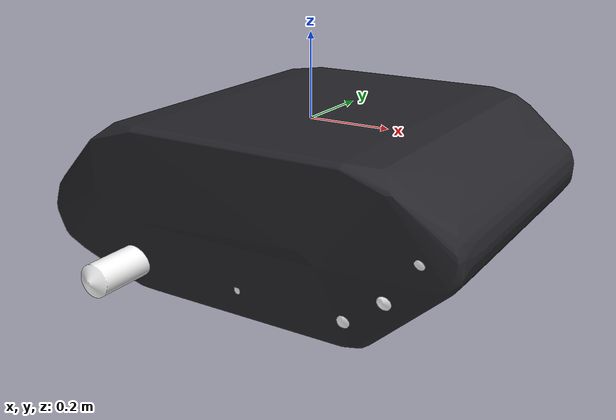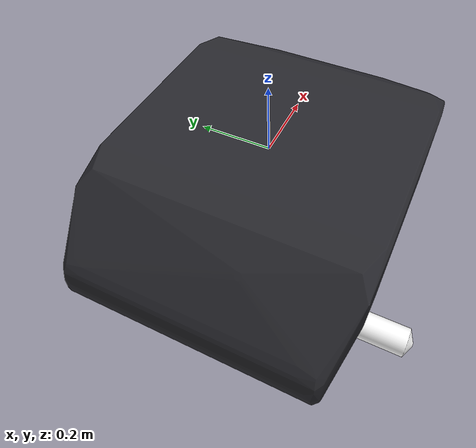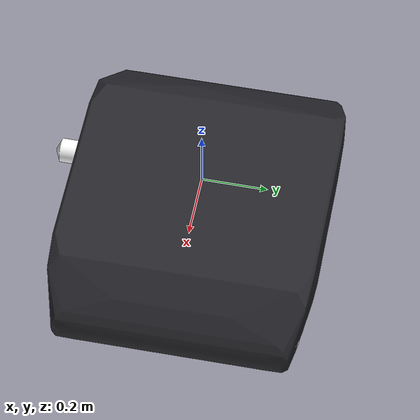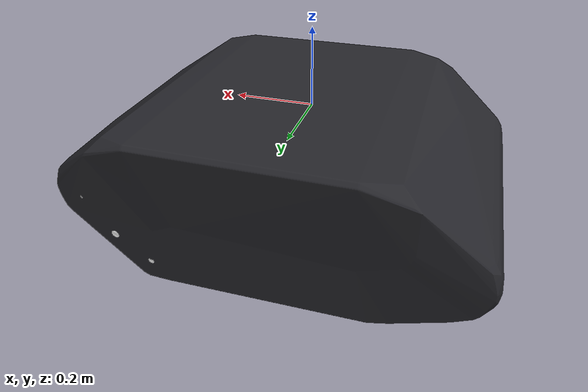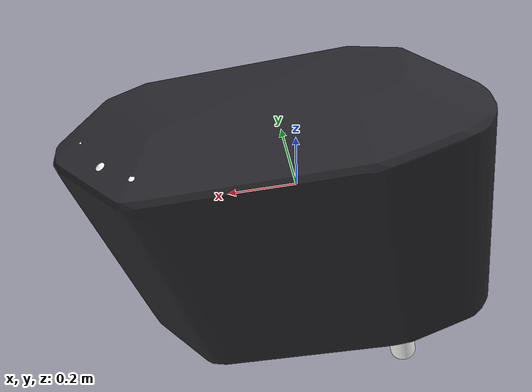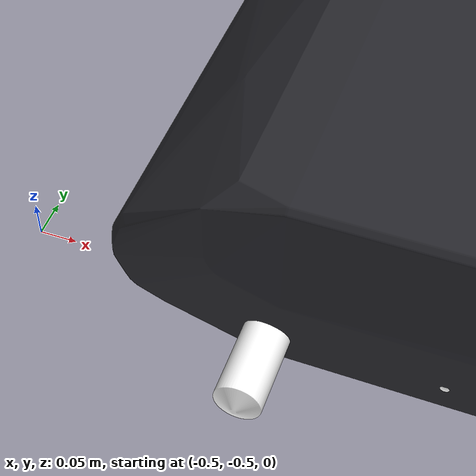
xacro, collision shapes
<?xml version="1.0" encoding="utf-8"?>
<robot name="bunker_description" xmlns:xacro="http://www.ros.org/wiki/xacro">

  <link name="base_link">
    <inertial>
      <origin xyz="0.0212410555532523 0.00475458359568469 -0.127580557949736" rpy="0 0 0" />
      <mass value="22" />
      <inertia ixx="0.607716166684979" ixy="1.92178193996147E-05" ixz="-0.036532069356182" iyy="1.70041426855404" iyz="2.16963122007266E-05" izz="1.84232351935185" />
    </inertial>
    <visual>
      <origin xyz="0.53 -0.392 -0.358" rpy="1.57 0 3.14" />
      <geometry>
        <mesh filename="package://bunker_description/meshes/BUNKER.STL" scale="0.001 0.001 0.001" />
      </geometry>
      <material name="">
        <color rgba="0.15 0.15 0.17 1" />
      </material>
    </visual>
    <collision>
      <origin xyz="0.53 -0.392 -0.358" rpy="1.57 0 3.14" />
      <geometry>
        <mesh filename="package://bunker_description/meshes_hull/BUNKER.STL" scale="0.001 0.001 0.001" />
      </geometry>
    </collision>
  </link>

  <link name="wheel1_Link">
    <inertial>
      <origin xyz="0 -1.38777878078145E-17 -0.0719999999999999" rpy="0 0 0" />
      <mass value="0.392034219968119" />
      <inertia ixx="0.000378440530116381" ixy="5.60822736805661E-21" ixz="3.04207802822425E-20" iyy="0.000378440530116381" iyz="-7.56626980356474E-21" izz="0.000710150518820894" />
    </inertial>
    <visual>
      <origin xyz="0 0 0" rpy="0 0 0" />
      <geometry>
        <mesh filename="package://bunker_description/meshes/wheel1_Link.STL" />
      </geometry>
      <material name="">
        <color rgba="1 1 1 1" />
      </material>
    </visual>
    <collision>
      <origin xyz="0 0 0" rpy="0 0 0" />
      <geometry>
        <mesh filename="package://bunker_description/meshes_hull/wheel1_Link.STL" />
      </geometry>
    </collision>
  </link>

  <joint name="wheel1_joint" type="revolute">
    <origin xyz="0.44403 0.3495 -0.12853" rpy="1.5708 0 -3.1416" />
    <parent link="base_link" />
    <child link="wheel1_Link" />
    <axis xyz="0 0 1" />
    <limit lower="-180" upper="180" effort="50" velocity="20" />
  </joint>

  <link name="wheel1.1_Link">
    <inertial>
      <origin xyz="-1.74279013442913E-08 5.87093572021469E-08 -0.0720000000000001" rpy="0 0 0" />
      <mass value="0.190328287901002" />
      <inertia ixx="6.58750963981394E-05" ixy="-1.46558944641469E-09" ixz="-8.34967331718859E-12" iyy="6.58795984671517E-05" iyz="-2.4786046130206E-12" izz="0.000112721820875598" />
    </inertial>
    <visual>
      <origin xyz="0 0 0" rpy="0 0 0" />
      <geometry>
        <mesh filename="package://bunker_description/meshes/wheel1.1_Link.STL" />
      </geometry>
      <material name="">
        <color rgba="1 1 1 1" />
      </material>
    </visual>
    <collision>
      <origin xyz="0 0 0" rpy="0 0 0" />
      <geometry>
        <mesh filename="package://bunker_description/meshes_hull/wheel1.1_Link.STL" />
      </geometry>
    </collision>
  </link>

  <joint name="wheel1.1_jont" type="fixed">
    <origin xyz="0.37551 0.3495 -0.22305" rpy="1.5708 0 -3.1416" />
    <parent link="base_link" />
    <child link="wheel1.1_Link" />
    <axis xyz="0 0 1" />
    <limit lower="-180" upper="180" effort="0" velocity="0" />
  </joint>

  <link name="wheel1.2_Link">
    <inertial>
      <origin xyz="1.66533453693773E-16 4.16333634234434E-17 -0.0720000000000002" rpy="0 0 0" />
      <mass value="0.271192811687251" />
      <inertia ixx="0.000179574259018481" ixy="1.15789498120549E-20" ixz="1.3563351843978E-21" iyy="0.000179574259018481" iyz="6.0369822309622E-23" izz="0.000332594534732139" />
    </inertial>
    <visual>
      <origin xyz="0 0 0" rpy="0 0 0" />
      <geometry>
        <mesh filename="package://bunker_description/meshes/wheel1.2_Link.STL" />
      </geometry>
      <material name="">
        <color rgba="1 1 1 1" />
      </material>
    </visual>
    <collision>
      <origin xyz="0 0 0" rpy="0 0 0" />
      <geometry>
        <mesh filename="package://bunker_description/meshes_hull/wheel1.2_Link.STL" />
      </geometry>
    </collision>
  </link>

  <joint name="wheel1.2_joint" type="fixed">
    <origin xyz="0.29039 0.3495 -0.28104" rpy="1.5708 0 -3.1416" />
    <parent link="base_link" />
    <child link="wheel1.2_Link" />
    <axis xyz="0 0 1" />
    <limit lower="-180" upper="180" effort="0" velocity="0" />
  </joint>

  <link name="wheel1.3_Link">
    <inertial>
      <origin xyz="3.44025652177504E-05 -2.66346274915008E-05 -0.0701504149473696" rpy="0 0 0" />
      <mass value="0.245835028330933" />
      <inertia ixx="0.000105254202004996" ixy="1.32328029886322E-08" ixz="3.84294589102693E-11" iyy="0.000105248656147198" iyz="-1.41155611914915E-11" izz="0.000173280771745758" />
    </inertial>
    <visual>
      <origin xyz="0 0 0" rpy="0 0 0" />
      <geometry>
        <mesh filename="package://bunker_description/meshes/wheel1.3_Link.STL" />
      </geometry>
      <material name="">
        <color rgba="1 1 1 1" />
      </material>
    </visual>
    <collision>
      <origin xyz="0 0 0" rpy="0 0 0" />
      <geometry>
        <mesh filename="package://bunker_description/meshes_hull/wheel1.3_Link.STL" />
      </geometry>
    </collision>
  </link>

  <joint name="wheel1.3_joint" type="fixed">
    <origin xyz="0.29603 0.3495 -0.087" rpy="1.5708 0 -3.1416" />
    <parent link="base_link" />
    <child link="wheel1.3_Link" />
    <axis xyz="0 0 -1" />
    <limit lower="-180" upper="180" effort="0" velocity="0" />
  </joint>

  <link name="wheel2_Link">
    <inertial>
      <origin xyz="-1.66533453693773E-16 0 0.072" rpy="0 0 0" />
      <mass value="0.392034219968119" />
      <inertia ixx="0.000378440530116381" ixy="3.37302217863781E-21" ixz="2.71827270955143E-20" iyy="0.000378440530116381" iyz="-7.32821644893157E-21" izz="0.000710150518820894" />
    </inertial>
    <visual>
      <origin xyz="0 0 0" rpy="0 0 0" />
      <geometry>
        <mesh filename="package://bunker_description/meshes/wheel2_Link.STL" />
      </geometry>
      <material name="">
        <color rgba="1 1 1 1" />
      </material>
    </visual>
    <collision>
      <origin xyz="0 0 0" rpy="0 0 0" />
      <geometry>
        <mesh filename="package://bunker_description/meshes_hull/wheel2_Link.STL" />
      </geometry>
    </collision>
  </link>

  <joint name="wheel2_joint" type="revolute">
    <origin xyz="0.44403 -0.3495 -0.12853" rpy="1.5708 0 -3.1416" />
    <parent link="base_link" />
    <child link="wheel2_Link" />
    <axis xyz="0 0 1" />
    <limit lower="-180" upper="180" effort="50" velocity="20" />
  </joint>

  <link name="wheel2.1_Link">
    <inertial>
      <origin xyz="-1.74279017328693E-08 5.87093572160247E-08 0.0720000000000002" rpy="0 0 0" />
      <mass value="0.190328287901002" />
      <inertia ixx="6.58750963981394E-05" ixy="-1.46558944642761E-09" ixz="-8.34967332343028E-12" iyy="6.58795984671517E-05" iyz="-2.47860459929511E-12" izz="0.000112721820875598" />
    </inertial>
    <visual>
      <origin xyz="0 0 0" rpy="0 0 0" />
      <geometry>
        <mesh filename="package://bunker_description/meshes/wheel2.1_Link.STL" />
      </geometry>
      <material name="">
        <color rgba="1 1 1 1" />
      </material>
    </visual>
    <collision>
      <origin xyz="0 0 0" rpy="0 0 0" />
      <geometry>
        <mesh filename="package://bunker_description/meshes_hull/wheel2.1_Link.STL" />
      </geometry>
    </collision>
  </link>

  <joint name="wheel2.1_joint" type="fixed">
    <origin xyz="0.37551 -0.3495 -0.22305" rpy="1.5708 0 -3.1416" />
    <parent link="base_link" />
    <child link="wheel2.1_Link" />
    <axis xyz="0 0 -1" />
    <limit lower="-180" upper="180" effort="0" velocity="0" />
  </joint>

  <link name="wheel2.2_Link">
    <inertial>
      <origin xyz="-1.38777878078145E-16 -4.85722573273506E-17 0.0720000000000003" rpy="0 0 0" />
      <mass value="0.27119281168725" />
      <inertia ixx="0.00017957425901848" ixy="6.28960386226657E-21" ixz="2.14010788664762E-21" iyy="0.00017957425901848" iyz="1.27709655724716E-22" izz="0.000332594534732139" />
    </inertial>
    <visual>
      <origin xyz="0 0 0" rpy="0 0 0" />
      <geometry>
        <mesh filename="package://bunker_description/meshes/wheel2.2_Link.STL" />
      </geometry>
      <material name="">
        <color rgba="1 1 1 1" />
      </material>
    </visual>
    <collision>
      <origin xyz="0 0 0" rpy="0 0 0" />
      <geometry>
        <mesh filename="package://bunker_description/meshes_hull/wheel2.2_Link.STL" />
      </geometry>
    </collision>
  </link>

  <joint name="wheel2.2_joint" type="revolute">
    <origin xyz="0.29039 -0.3495 -0.28104" rpy="1.5708 0 -3.1416" />
    <parent link="base_link" />
    <child link="wheel2.2_Link" />
    <axis xyz="0 0 -1" />
    <limit lower="-180" upper="180" effort="0" velocity="0" />
  </joint>

  <link name="wheel2.3_Link">
    <inertial>
      <origin xyz="3.51083051564616E-05 -2.7181014665284E-05 0.0709276770204769" rpy="0 0 0" />
      <mass value="0.240893303086836" />
      <inertia ixx="0.000105035118852508" ixy="1.32328029886296E-08" ixz="3.84294589110161E-11" iyy="0.00010502957299471" iyz="-1.41155611875745E-11" izz="0.00017298179736849" />
    </inertial>
    <visual>
      <origin xyz="0 0 0" rpy="0 0 0" />
      <geometry>
        <mesh filename="package://bunker_description/meshes/wheel2.3_Link.STL" />
      </geometry>
      <material name="">
        <color rgba="1 1 1 1" />
      </material>
    </visual>
    <collision>
      <origin xyz="0 0 0" rpy="0 0 0" />
      <geometry>
        <mesh filename="package://bunker_description/meshes_hull/wheel2.3_Link.STL" />
      </geometry>
    </collision>
  </link>

  <joint name="wheel2.3_joint" type="revolute">
    <origin xyz="0.29603 -0.3495 -0.087" rpy="1.5708 0 -3.1416" />
    <parent link="base_link" />
    <child link="wheel2.3_Link" />
    <axis xyz="0 0 1" />
    <limit lower="-180" upper="180" effort="0" velocity="0" />
  </joint>

  <link name="wheel3_Link">
    <inertial>
      <origin xyz="-1.5143569731535E-10 7.07767178198537E-16 -0.0246054820762604" rpy="0 0 0" />
      <mass value="1.35828296445862" />
      <inertia ixx="0.00232456013775523" ixy="-1.61343020248111E-09" ixz="-4.5670735364335E-13" iyy="0.00232456564213727" iyz="-1.36036258272812E-18" izz="0.00308347787030649" />
    </inertial>
    <visual>
      <origin xyz="0 0 0" rpy="0 0 0" />
      <geometry>
        <mesh filename="package://bunker_description/meshes/wheel3_Link.STL" />
      </geometry>
      <material name="">
        <color rgba="1 1 1 1" />
      </material>
    </visual>
    <collision>
      <origin xyz="0 0 0" rpy="0 0 0" />
      <geometry>
        <mesh filename="package://bunker_description/meshes_hull/wheel3_Link.STL" />
      </geometry>
    </collision>
  </link>

  <joint name="wheel3_joint" type="revolute">
    <origin xyz="-0.38871 0.295 -0.19381" rpy="1.5708 0 -3.1416" />
    <parent link="base_link" />
    <child link="wheel3_Link" />
    <axis xyz="0 0 1" />
    <limit lower="-180" upper="180" effort="50" velocity="20" />
  </joint>

  <link name="wheel3.1_Link">
    <inertial>
      <origin xyz="5.55111512312578E-17 5.55111512312578E-17 -0.0720000000000002" rpy="0 0 0" />
      <mass value="0.271192811687251" />
      <inertia ixx="0.000179574259018481" ixy="-1.73824343982442E-20" ixz="-2.53159654382751E-21" iyy="0.000179574259018481" iyz="-3.13741449878515E-21" izz="0.000332594534732139" />
    </inertial>
    <visual>
      <origin xyz="0 0 0" rpy="0 0 0" />
      <geometry>
        <mesh filename="package://bunker_description/meshes/wheel3.1_Link.STL" />
      </geometry>
      <material name="">
        <color rgba="1 1 1 1" />
      </material>
    </visual>
    <collision>
      <origin xyz="0 0 0" rpy="0 0 0" />
      <geometry>
        <mesh filename="package://bunker_description/meshes_hull/wheel3.1_Link.STL" />
      </geometry>
    </collision>
  </link>

  <joint name="wheel3.1_joint" type="revolute">
    <origin xyz="-0.23111 0.3495 -0.27671" rpy="1.5708 0 -3.1416" />
    <parent link="base_link" />
    <child link="wheel3.1_Link" />
    <axis xyz="0 0 1" />
    <limit lower="-180" upper="180" effort="0" velocity="0" />
  </joint>

  <link name="wheel3.2_Link">
    <inertial>
      <origin xyz="7.58128369110489E-17 7.63278329429795E-17 -0.0720000000000003" rpy="0 0 0" />
      <mass value="0.27119281168725" />
      <inertia ixx="0.00017957425901848" ixy="9.82929052458426E-22" ixz="1.10990388135291E-21" iyy="0.00017957425901848" iyz="-4.81322327079121E-21" izz="0.000332594534732139" />
    </inertial>
    <visual>
      <origin xyz="0 0 0" rpy="0 0 0" />
      <geometry>
        <mesh filename="package://bunker_description/meshes/wheel3.2_Link.STL" />
      </geometry>
      <material name="">
        <color rgba="1 1 1 1" />
      </material>
    </visual>
    <collision>
      <origin xyz="0 0 0" rpy="0 0 0" />
      <geometry>
        <mesh filename="package://bunker_description/meshes_hull/wheel3.2_Link.STL" />
      </geometry>
    </collision>
  </link>

  <joint name="wheel3.2_joint" type="revolute">
    <origin xyz="0.043885 0.3495 -0.27671" rpy="1.5708 0 -3.1416" />
    <parent link="base_link" />
    <child link="wheel3.2_Link" />
    <axis xyz="0 0 1" />
    <limit lower="-180" upper="180" effort="0" velocity="0" />
  </joint>

  <link name="wheel3.3_Link">
    <inertial>
      <origin xyz="1.37732703020532E-08 -5.29206664124648E-05 -0.0701501700151683" rpy="0 0 0" />
      <mass value="0.245836054976119" />
      <inertia ixx="0.000105264944409738" ixy="7.98231761628902E-12" ixz="6.80400273605472E-11" iyy="0.000105238344260685" iyz="-2.72106317781962E-11" izz="0.000173281039335396" />
    </inertial>
    <visual>
      <origin xyz="0 0 0" rpy="0 0 0" />
      <geometry>
        <mesh filename="package://bunker_description/meshes/wheel3.3_Link.STL" />
      </geometry>
      <material name="">
        <color rgba="1 1 1 1" />
      </material>
    </visual>
    <collision>
      <origin xyz="0 0 0" rpy="0 0 0" />
      <geometry>
        <mesh filename="package://bunker_description/meshes_hull/wheel3.3_Link.STL" />
      </geometry>
    </collision>
  </link>

  <joint name="wheel3.3_joint" type="revolute">
    <origin xyz="-0.28597 0.3495 -0.087" rpy="1.5708 0 -3.1416" />
    <parent link="base_link" />
    <child link="wheel3.3_Link" />
    <axis xyz="0 0 -1" />
    <limit lower="-180" upper="180" effort="0" velocity="0" />
  </joint>

  <link name="wheel4_Link">
    <inertial>
      <origin xyz="5.55111512312578E-17 1.51436273243544E-10 0.0245928853369881" rpy="0 0 0" />
      <mass value="1.35828296445862" />
      <inertia ixx="0.00232456564213727" ixy="-1.6134302023684E-09" ixz="-3.67391703208082E-19" iyy="0.00232456013775523" iyz="-4.56707494796216E-13" izz="0.00308347787030649" />
    </inertial>
    <visual>
      <origin xyz="0 0 0" rpy="0 0 0" />
      <geometry>
        <mesh filename="package://bunker_description/meshes/wheel4_Link.STL" />
      </geometry>
      <material name="">
        <color rgba="1 1 1 1" />
      </material>
    </visual>
    <collision>
      <origin xyz="0 0 0" rpy="0 0 0" />
      <geometry>
        <mesh filename="package://bunker_description/meshes_hull/wheel4_Link.STL" />
      </geometry>
    </collision>
  </link>

  <joint name="wheel4_joint" type="revolute">
    <origin xyz="-0.38871 -0.295 -0.19381" rpy="1.5708 0 -3.1416" />
    <parent link="base_link" />
    <child link="wheel4_Link" />
    <axis xyz="0 0 1" />
    <limit lower="-180" upper="180" effort="50" velocity="20" />
  </joint>

  <link name="wheel4.1_Link">
    <inertial>
      <origin xyz="-1.11022302462516E-16 -5.55111512312578E-17 0.0720000000000002" rpy="0 0 0" />
      <mass value="0.271192811687251" />
      <inertia ixx="0.000179574259018481" ixy="-7.93399024302093E-21" ixz="-2.13342044570487E-21" iyy="0.000179574259018481" iyz="-3.23624373974149E-21" izz="0.000332594534732139" />
    </inertial>
    <visual>
      <origin xyz="0 0 0" rpy="0 0 0" />
      <geometry>
        <mesh filename="package://bunker_description/meshes/wheel4.1_Link.STL" />
      </geometry>
      <material name="">
        <color rgba="1 1 1 1" />
      </material>
    </visual>
    <collision>
      <origin xyz="0 0 0" rpy="0 0 0" />
      <geometry>
        <mesh filename="package://bunker_description/meshes_hull/wheel4.1_Link.STL" />
      </geometry>
    </collision>
  </link>

  <joint name="wheel4.1_joint" type="revolute">
    <origin xyz="-0.23111 -0.3495 -0.27671" rpy="1.5708 0 -3.1416" />
    <parent link="base_link" />
    <child link="wheel4.1_Link" />
    <axis xyz="0 0 -1" />
    <limit lower="-180" upper="180" effort="0" velocity="0" />
  </joint>

  <link name="wheel4.2_Link">
    <inertial>
      <origin xyz="-7.64498056873841E-17 -4.85722573273506E-17 0.0720000000000004" rpy="0 0 0" />
      <mass value="0.27119281168725" />
      <inertia ixx="0.00017957425901848" ixy="6.3005828905746E-22" ixz="1.1753358195074E-22" iyy="0.00017957425901848" iyz="-3.27347099653111E-21" izz="0.000332594534732139" />
    </inertial>
    <visual>
      <origin xyz="0 0 0" rpy="0 0 0" />
      <geometry>
        <mesh filename="package://bunker_description/meshes/wheel4.2_Link.STL" />
      </geometry>
      <material name="">
        <color rgba="1 1 1 1" />
      </material>
    </visual>
    <collision>
      <origin xyz="0 0 0" rpy="0 0 0" />
      <geometry>
        <mesh filename="package://bunker_description/meshes_hull/wheel4.2_Link.STL" />
      </geometry>
    </collision>
  </link>

  <joint name="wheel4.2_joint" type="revolute">
    <origin xyz="0.043885 -0.3495 -0.27671" rpy="1.5708 0 -3.1416" />
    <parent link="base_link" />
    <child link="wheel4.2_Link" />
    <axis xyz="0 0 -1" />
    <limit lower="-180" upper="180" effort="0" velocity="0" />
  </joint>

  <link name="wheel4.3_Link">
    <inertial>
      <origin xyz="1.37732700244975E-08 -5.29206664124926E-05 0.0701152686893121" rpy="0 0 0" />
      <mass value="0.245836054976119" />
      <inertia ixx="0.000105264944409738" ixy="7.98231761858719E-12" ixz="6.80400273764357E-11" iyy="0.000105238344260685" iyz="-2.72106317797361E-11" izz="0.000173281039335396" />
    </inertial>
    <visual>
      <origin xyz="0 0 0" rpy="0 0 0" />
      <geometry>
        <mesh filename="package://bunker_description/meshes/wheel4.3_Link.STL" />
      </geometry>
      <material name="">
        <color rgba="1 1 1 1" />
      </material>
    </visual>
    <collision>
      <origin xyz="0 0 0" rpy="0 0 0" />
      <geometry>
        <mesh filename="package://bunker_description/meshes_hull/wheel4.3_Link.STL" />
      </geometry>
    </collision>
  </link>

  <joint name="wheel4.3_joint" type="revolute">
    <origin xyz="-0.28597 -0.3495 -0.087" rpy="1.5708 0 -3.1416" />
    <parent link="base_link" />
    <child link="wheel4.3_Link" />
    <axis xyz="0 0 1" />
    <limit lower="-180" upper="180" effort="0" velocity="0" />
  </joint>

  <!-- Gazebo configuration — original URDF colors preserved -->

  <!-- Ignition DiffDrive (adapted from COSTAR Husky) -->
  <gazebo>
    <plugin filename="libignition-gazebo-diff-drive-system.so" name="ignition::gazebo::systems::DiffDrive">
      <left_joint>wheel1_joint</left_joint>
      <left_joint>wheel3_joint</left_joint>
      <right_joint>wheel2_joint</right_joint>
      <right_joint>wheel4_joint</right_joint>
      <wheel_separation>0.70</wheel_separation>
      <wheel_radius>0.165</wheel_radius>
      <odom_publish_frequency>10</odom_publish_frequency>
      <topic>/bunker/cmd_vel</topic>
      <max_linear_acceleration>0.5</max_linear_acceleration>
      <max_angular_acceleration>1.0</max_angular_acceleration>
      <max_linear_velocity>1.0</max_linear_velocity>
      <max_angular_velocity>1.5</max_angular_velocity>
    </plugin>
  </gazebo>

  <!-- Main wheel friction (matching Husky) -->
  <xacro:macro name="main_wheel_gazebo" params="link_name">
    <gazebo reference="${link_name}">
      <collision>
        <surface>
          <friction>
            <ode>
              <mu>0.5</mu>
              <mu2>1</mu2>
              <slip1>0.0</slip1>
              <slip2>0</slip2>
              <fdir1>0 0 1</fdir1>
            </ode>
          </friction>
        </surface>
      </collision>
    </gazebo>
  </xacro:macro>

  <xacro:main_wheel_gazebo link_name="wheel1_Link" />
  <xacro:main_wheel_gazebo link_name="wheel2_Link" />
  <xacro:main_wheel_gazebo link_name="wheel3_Link" />
  <xacro:main_wheel_gazebo link_name="wheel4_Link" />

</robot>
